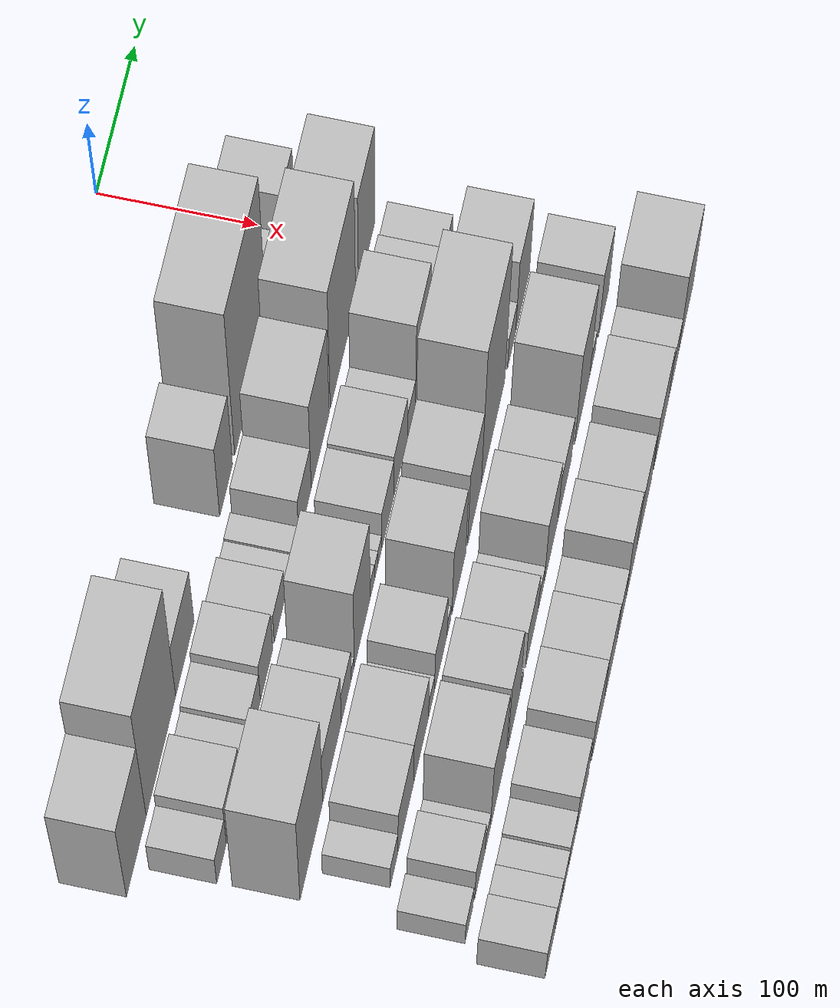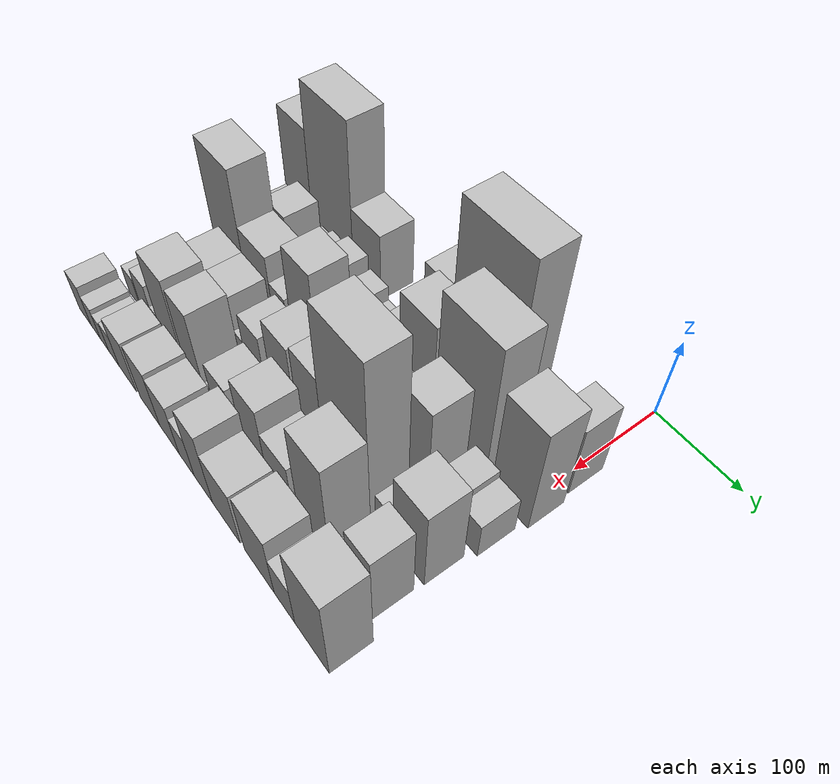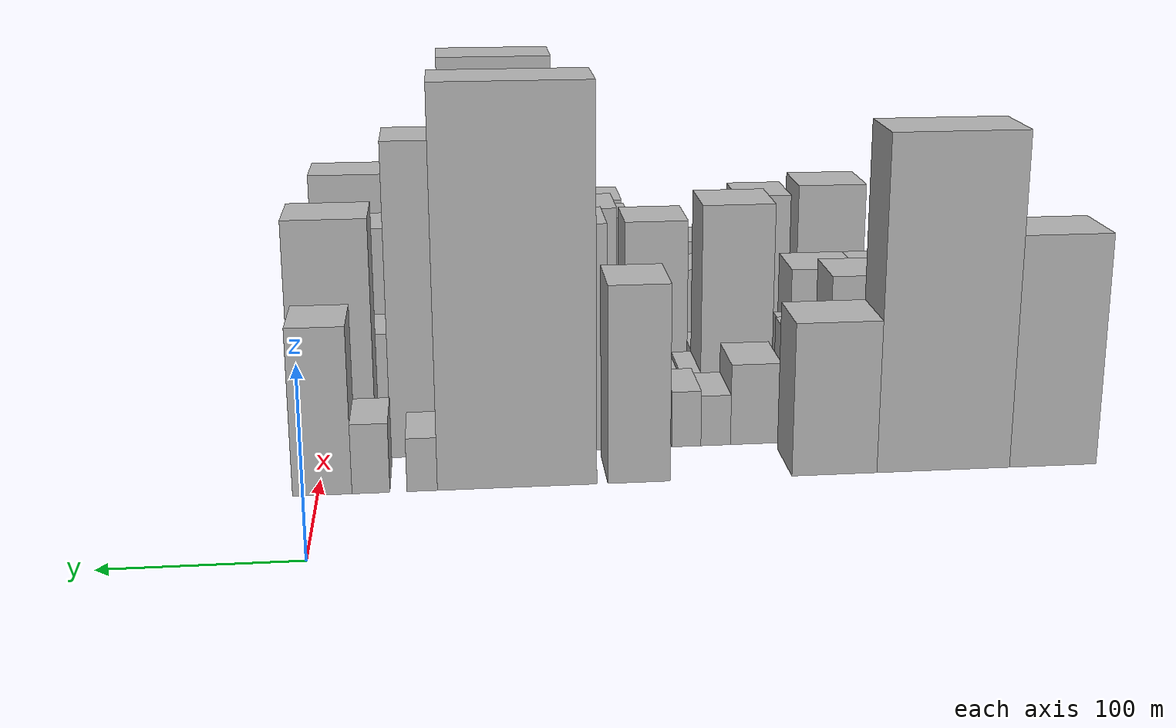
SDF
<sdf version="1.6">
 <world name="default">
  <model name="building_14">
   <static>1</static>
   <pose>100.0000 -401.4959 0 0.000000 0.000000 0.000000</pose>
   <link name="link">
    <pose>0 0 66.00 0 0 0</pose>
    <collision name="collision"><geometry><box><size>40.0000 49.4664 132.0000</size></box></geometry></collision>
    <visual name="visual">
     <cast_shadows>0</cast_shadows>
     <geometry><box><size>40.0000 49.4664 132.0000</size></box></geometry>
     <material>
      <script>
       <uri>model://HANNAS_wall/materials/scripts</uri>
       <uri>model://HANNAS_wall/materials/textures</uri>
       <name>vrc/HANNAS_wall</name>
      </script>
     </material>
    </visual>
   </link>
  </model>
  <model name="building_15">
   <static>1</static>
   <pose>100.0000 -339.3826 0 0.000000 0.000000 0.000000</pose>
   <link name="link">
    <pose>0 0 94.50 0 0 0</pose>
    <collision name="collision"><geometry><box><size>40.0000 74.7603 189.0000</size></box></geometry></collision>
    <visual name="visual">
     <cast_shadows>0</cast_shadows>
     <geometry><box><size>40.0000 74.7603 189.0000</size></box></geometry>
     <material>
      <script>
       <uri>model://HANNAS_wall/materials/scripts</uri>
       <uri>model://HANNAS_wall/materials/textures</uri>
       <name>vrc/HANNAS_wall</name>
      </script>
     </material>
    </visual>
   </link>
  </model>
  <model name="building_16">
   <static>1</static>
   <pose>100.0000 -278.3707 0 0.000000 0.000000 0.000000</pose>
   <link name="link">
    <pose>0 0 43.50 0 0 0</pose>
    <collision name="collision"><geometry><box><size>40.0000 47.2636 87.0000</size></box></geometry></collision>
    <visual name="visual">
     <cast_shadows>0</cast_shadows>
     <geometry><box><size>40.0000 47.2636 87.0000</size></box></geometry>
     <material>
      <script>
       <uri>model://HANNAS_wall/materials/scripts</uri>
       <uri>model://HANNAS_wall/materials/textures</uri>
       <name>vrc/HANNAS_wall</name>
      </script>
     </material>
    </visual>
   </link>
  </model>
  <model name="building_17">
   <static>1</static>
   <pose>100.0000 -170.9762 0 0.000000 0.000000 0.000000</pose>
   <link name="link">
    <pose>0 0 55.50 0 0 0</pose>
    <collision name="collision"><geometry><box><size>40.0000 33.8418 111.0000</size></box></geometry></collision>
    <visual name="visual">
     <cast_shadows>0</cast_shadows>
     <geometry><box><size>40.0000 33.8418 111.0000</size></box></geometry>
     <material>
      <script>
       <uri>model://HANNAS_wall/materials/scripts</uri>
       <uri>model://HANNAS_wall/materials/textures</uri>
       <name>vrc/HANNAS_wall</name>
      </script>
     </material>
    </visual>
   </link>
  </model>
  <model name="building_18">
   <static>1</static>
   <pose>100.0000 -105.3634 0 0.000000 0.000000 0.000000</pose>
   <link name="link">
    <pose>0 0 109.50 0 0 0</pose>
    <collision name="collision"><geometry><box><size>40.0000 85.3837 219.0000</size></box></geometry></collision>
    <visual name="visual">
     <cast_shadows>0</cast_shadows>
     <geometry><box><size>40.0000 85.3837 219.0000</size></box></geometry>
     <material>
      <script>
       <uri>model://HANNAS_wall/materials/scripts</uri>
       <uri>model://HANNAS_wall/materials/textures</uri>
       <name>vrc/HANNAS_wall</name>
      </script>
     </material>
    </visual>
   </link>
  </model>
  <model name="building_19">
   <static>1</static>
   <pose>100.0000 -54.6219 0 0.000000 0.000000 0.000000</pose>
   <link name="link">
    <pose>0 0 15.00 0 0 0</pose>
    <collision name="collision"><geometry><box><size>40.0000 16.0994 30.0000</size></box></geometry></collision>
    <visual name="visual">
     <cast_shadows>0</cast_shadows>
     <geometry><box><size>40.0000 16.0994 30.0000</size></box></geometry>
     <material>
      <script>
       <uri>model://HANNAS_wall/materials/scripts</uri>
       <uri>model://HANNAS_wall/materials/textures</uri>
       <name>vrc/HANNAS_wall</name>
      </script>
     </material>
    </visual>
   </link>
  </model>
  <model name="building_20">
   <static>1</static>
   <pose>100.0000 -27.5893 0 0.000000 0.000000 0.000000</pose>
   <link name="link">
    <pose>0 0 19.50 0 0 0</pose>
    <collision name="collision"><geometry><box><size>40.0000 19.9658 39.0000</size></box></geometry></collision>
    <visual name="visual">
     <cast_shadows>0</cast_shadows>
     <geometry><box><size>40.0000 19.9658 39.0000</size></box></geometry>
     <material>
      <script>
       <uri>model://HANNAS_wall/materials/scripts</uri>
       <uri>model://HANNAS_wall/materials/textures</uri>
       <name>vrc/HANNAS_wall</name>
      </script>
     </material>
    </visual>
   </link>
  </model>
  <model name="building_21">
   <static>1</static>
   <pose>100.0000 -2.0361 0 0.000000 0.000000 0.000000</pose>
   <link name="link">
    <pose>0 0 46.50 0 0 0</pose>
    <collision name="collision"><geometry><box><size>40.0000 31.1406 93.0000</size></box></geometry></collision>
    <visual name="visual">
     <cast_shadows>0</cast_shadows>
     <geometry><box><size>40.0000 31.1406 93.0000</size></box></geometry>
     <material>
      <script>
       <uri>model://HANNAS_wall/materials/scripts</uri>
       <uri>model://HANNAS_wall/materials/textures</uri>
       <name>vrc/HANNAS_wall</name>
      </script>
     </material>
    </visual>
   </link>
  </model>
  <model name="building_57">
   <static>1</static>
   <pose>149.0000 -395.1287 0 0.000000 0.000000 0.000000</pose>
   <link name="link">
    <pose>0 0 24.00 0 0 0</pose>
    <collision name="collision"><geometry><box><size>40.0000 24.6093 48.0000</size></box></geometry></collision>
    <visual name="visual">
     <cast_shadows>0</cast_shadows>
     <geometry><box><size>40.0000 24.6093 48.0000</size></box></geometry>
     <material>
      <script>
       <uri>model://HANNAS_wall/materials/scripts</uri>
       <uri>model://HANNAS_wall/materials/textures</uri>
       <name>vrc/HANNAS_wall</name>
      </script>
     </material>
    </visual>
   </link>
  </model>
  <model name="building_58">
   <static>1</static>
   <pose>149.0000 -364.3468 0 0.000000 0.000000 0.000000</pose>
   <link name="link">
    <pose>0 0 34.50 0 0 0</pose>
    <collision name="collision"><geometry><box><size>40.0000 36.9546 69.0000</size></box></geometry></collision>
    <visual name="visual">
     <cast_shadows>0</cast_shadows>
     <geometry><box><size>40.0000 36.9546 69.0000</size></box></geometry>
     <material>
      <script>
       <uri>model://HANNAS_wall/materials/scripts</uri>
       <uri>model://HANNAS_wall/materials/textures</uri>
       <name>vrc/HANNAS_wall</name>
      </script>
     </material>
    </visual>
   </link>
  </model>
  <model name="building_59">
   <static>1</static>
   <pose>149.0000 -332.0587 0 0.000000 0.000000 0.000000</pose>
   <link name="link">
    <pose>0 0 19.50 0 0 0</pose>
    <collision name="collision"><geometry><box><size>40.0000 19.6216 39.0000</size></box></geometry></collision>
    <visual name="visual">
     <cast_shadows>0</cast_shadows>
     <geometry><box><size>40.0000 19.6216 39.0000</size></box></geometry>
     <material>
      <script>
       <uri>model://HANNAS_wall/materials/scripts</uri>
       <uri>model://HANNAS_wall/materials/textures</uri>
       <name>vrc/HANNAS_wall</name>
      </script>
     </material>
    </visual>
   </link>
  </model>
  <model name="building_60">
   <static>1</static>
   <pose>149.0000 -308.2977 0 0.000000 0.000000 0.000000</pose>
   <link name="link">
    <pose>0 0 24.00 0 0 0</pose>
    <collision name="collision"><geometry><box><size>40.0000 27.9004 48.0000</size></box></geometry></collision>
    <visual name="visual">
     <cast_shadows>0</cast_shadows>
     <geometry><box><size>40.0000 27.9004 48.0000</size></box></geometry>
     <material>
      <script>
       <uri>model://HANNAS_wall/materials/scripts</uri>
       <uri>model://HANNAS_wall/materials/textures</uri>
       <name>vrc/HANNAS_wall</name>
      </script>
     </material>
    </visual>
   </link>
  </model>
  <model name="building_61">
   <static>1</static>
   <pose>149.0000 -278.0812 0 0.000000 0.000000 0.000000</pose>
   <link name="link">
    <pose>0 0 31.50 0 0 0</pose>
    <collision name="collision"><geometry><box><size>40.0000 32.5325 63.0000</size></box></geometry></collision>
    <visual name="visual">
     <cast_shadows>0</cast_shadows>
     <geometry><box><size>40.0000 32.5325 63.0000</size></box></geometry>
     <material>
      <script>
       <uri>model://HANNAS_wall/materials/scripts</uri>
       <uri>model://HANNAS_wall/materials/textures</uri>
       <name>vrc/HANNAS_wall</name>
      </script>
     </material>
    </visual>
   </link>
  </model>
  <model name="building_62">
   <static>1</static>
   <pose>149.0000 -243.5460 0 0.000000 0.000000 0.000000</pose>
   <link name="link">
    <pose>0 0 24.00 0 0 0</pose>
    <collision name="collision"><geometry><box><size>40.0000 28.5379 48.0000</size></box></geometry></collision>
    <visual name="visual">
     <cast_shadows>0</cast_shadows>
     <geometry><box><size>40.0000 28.5379 48.0000</size></box></geometry>
     <material>
      <script>
       <uri>model://HANNAS_wall/materials/scripts</uri>
       <uri>model://HANNAS_wall/materials/textures</uri>
       <name>vrc/HANNAS_wall</name>
      </script>
     </material>
    </visual>
   </link>
  </model>
  <model name="building_63">
   <static>1</static>
   <pose>149.0000 -220.7330 0 0.000000 0.000000 0.000000</pose>
   <link name="link">
    <pose>0 0 15.00 0 0 0</pose>
    <collision name="collision"><geometry><box><size>40.0000 17.0881 30.0000</size></box></geometry></collision>
    <visual name="visual">
     <cast_shadows>0</cast_shadows>
     <geometry><box><size>40.0000 17.0881 30.0000</size></box></geometry>
     <material>
      <script>
       <uri>model://HANNAS_wall/materials/scripts</uri>
       <uri>model://HANNAS_wall/materials/textures</uri>
       <name>vrc/HANNAS_wall</name>
      </script>
     </material>
    </visual>
   </link>
  </model>
  <model name="building_64">
   <static>1</static>
   <pose>149.0000 -203.7833 0 0.000000 0.000000 0.000000</pose>
   <link name="link">
    <pose>0 0 16.50 0 0 0</pose>
    <collision name="collision"><geometry><box><size>40.0000 16.8115 33.0000</size></box></geometry></collision>
    <visual name="visual">
     <cast_shadows>0</cast_shadows>
     <geometry><box><size>40.0000 16.8115 33.0000</size></box></geometry>
     <material>
      <script>
       <uri>model://HANNAS_wall/materials/scripts</uri>
       <uri>model://HANNAS_wall/materials/textures</uri>
       <name>vrc/HANNAS_wall</name>
      </script>
     </material>
    </visual>
   </link>
  </model>
  <model name="building_65">
   <static>1</static>
   <pose>149.0000 -175.4910 0 0.000000 0.000000 0.000000</pose>
   <link name="link">
    <pose>0 0 33.00 0 0 0</pose>
    <collision name="collision"><geometry><box><size>40.0000 33.7731 66.0000</size></box></geometry></collision>
    <visual name="visual">
     <cast_shadows>0</cast_shadows>
     <geometry><box><size>40.0000 33.7731 66.0000</size></box></geometry>
     <material>
      <script>
       <uri>model://HANNAS_wall/materials/scripts</uri>
       <uri>model://HANNAS_wall/materials/textures</uri>
       <name>vrc/HANNAS_wall</name>
      </script>
     </material>
    </visual>
   </link>
  </model>
  <model name="building_66">
   <static>1</static>
   <pose>149.0000 -134.2729 0 0.000000 0.000000 0.000000</pose>
   <link name="link">
    <pose>0 0 66.00 0 0 0</pose>
    <collision name="collision"><geometry><box><size>40.0000 48.6631 132.0000</size></box></geometry></collision>
    <visual name="visual">
     <cast_shadows>0</cast_shadows>
     <geometry><box><size>40.0000 48.6631 132.0000</size></box></geometry>
     <material>
      <script>
       <uri>model://HANNAS_wall/materials/scripts</uri>
       <uri>model://HANNAS_wall/materials/textures</uri>
       <name>vrc/HANNAS_wall</name>
      </script>
     </material>
    </visual>
   </link>
  </model>
  <model name="building_67">
   <static>1</static>
   <pose>149.0000 -71.8747 0 0.000000 0.000000 0.000000</pose>
   <link name="link">
    <pose>0 0 90.00 0 0 0</pose>
    <collision name="collision"><geometry><box><size>40.0000 70.1333 180.0000</size></box></geometry></collision>
    <visual name="visual">
     <cast_shadows>0</cast_shadows>
     <geometry><box><size>40.0000 70.1333 180.0000</size></box></geometry>
     <material>
      <script>
       <uri>model://HANNAS_wall/materials/scripts</uri>
       <uri>model://HANNAS_wall/materials/textures</uri>
       <name>vrc/HANNAS_wall</name>
      </script>
     </material>
    </visual>
   </link>
  </model>
  <model name="building_68">
   <static>1</static>
   <pose>149.0000 -5.6333 0 0.000000 0.000000 0.000000</pose>
   <link name="link">
    <pose>0 0 69.00 0 0 0</pose>
    <collision name="collision"><geometry><box><size>40.0000 46.3496 138.0000</size></box></geometry></collision>
    <visual name="visual">
     <cast_shadows>0</cast_shadows>
     <geometry><box><size>40.0000 46.3496 138.0000</size></box></geometry>
     <material>
      <script>
       <uri>model://HANNAS_wall/materials/scripts</uri>
       <uri>model://HANNAS_wall/materials/textures</uri>
       <name>vrc/HANNAS_wall</name>
      </script>
     </material>
    </visual>
   </link>
  </model>
  <model name="building_110">
   <static>1</static>
   <pose>198.0000 -376.8604 0 0.000000 0.000000 0.000000</pose>
   <link name="link">
    <pose>0 0 76.50 0 0 0</pose>
    <collision name="collision"><geometry><box><size>40.0000 59.9636 153.0000</size></box></geometry></collision>
    <visual name="visual">
     <cast_shadows>0</cast_shadows>
     <geometry><box><size>40.0000 59.9636 153.0000</size></box></geometry>
     <material>
      <script>
       <uri>model://HANNAS_wall/materials/scripts</uri>
       <uri>model://HANNAS_wall/materials/textures</uri>
       <name>vrc/HANNAS_wall</name>
      </script>
     </material>
    </visual>
   </link>
  </model>
  <model name="building_111">
   <static>1</static>
   <pose>198.0000 -322.1669 0 0.000000 0.000000 0.000000</pose>
   <link name="link">
    <pose>0 0 42.00 0 0 0</pose>
    <collision name="collision"><geometry><box><size>40.0000 49.4233 84.0000</size></box></geometry></collision>
    <visual name="visual">
     <cast_shadows>0</cast_shadows>
     <geometry><box><size>40.0000 49.4233 84.0000</size></box></geometry>
     <material>
      <script>
       <uri>model://HANNAS_wall/materials/scripts</uri>
       <uri>model://HANNAS_wall/materials/textures</uri>
       <name>vrc/HANNAS_wall</name>
      </script>
     </material>
    </visual>
   </link>
  </model>
  <model name="building_112">
   <static>1</static>
   <pose>198.0000 -283.9338 0 0.000000 0.000000 0.000000</pose>
   <link name="link">
    <pose>0 0 25.50 0 0 0</pose>
    <collision name="collision"><geometry><box><size>40.0000 27.0429 51.0000</size></box></geometry></collision>
    <visual name="visual">
     <cast_shadows>0</cast_shadows>
     <geometry><box><size>40.0000 27.0429 51.0000</size></box></geometry>
     <material>
      <script>
       <uri>model://HANNAS_wall/materials/scripts</uri>
       <uri>model://HANNAS_wall/materials/textures</uri>
       <name>vrc/HANNAS_wall</name>
      </script>
     </material>
    </visual>
   </link>
  </model>
  <model name="building_113">
   <static>1</static>
   <pose>198.0000 -266.3054 0 0.000000 0.000000 0.000000</pose>
   <link name="link">
    <pose>0 0 9.00 0 0 0</pose>
    <collision name="collision"><geometry><box><size>40.0000 8.2140 18.0000</size></box></geometry></collision>
    <visual name="visual">
     <cast_shadows>0</cast_shadows>
     <geometry><box><size>40.0000 8.2140 18.0000</size></box></geometry>
     <material>
      <script>
       <uri>model://HANNAS_wall/materials/scripts</uri>
       <uri>model://HANNAS_wall/materials/textures</uri>
       <name>vrc/HANNAS_wall</name>
      </script>
     </material>
    </visual>
   </link>
  </model>
  <model name="building_114">
   <static>1</static>
   <pose>198.0000 -240.7246 0 0.000000 0.000000 0.000000</pose>
   <link name="link">
    <pose>0 0 64.50 0 0 0</pose>
    <collision name="collision"><geometry><box><size>40.0000 42.9476 129.0000</size></box></geometry></collision>
    <visual name="visual">
     <cast_shadows>0</cast_shadows>
     <geometry><box><size>40.0000 42.9476 129.0000</size></box></geometry>
     <material>
      <script>
       <uri>model://HANNAS_wall/materials/scripts</uri>
       <uri>model://HANNAS_wall/materials/textures</uri>
       <name>vrc/HANNAS_wall</name>
      </script>
     </material>
    </visual>
   </link>
  </model>
  <model name="building_115">
   <static>1</static>
   <pose>198.0000 -213.1814 0 0.000000 0.000000 0.000000</pose>
   <link name="link">
    <pose>0 0 13.50 0 0 0</pose>
    <collision name="collision"><geometry><box><size>40.0000 12.1388 27.0000</size></box></geometry></collision>
    <visual name="visual">
     <cast_shadows>0</cast_shadows>
     <geometry><box><size>40.0000 12.1388 27.0000</size></box></geometry>
     <material>
      <script>
       <uri>model://HANNAS_wall/materials/scripts</uri>
       <uri>model://HANNAS_wall/materials/textures</uri>
       <name>vrc/HANNAS_wall</name>
      </script>
     </material>
    </visual>
   </link>
  </model>
  <model name="building_116">
   <static>1</static>
   <pose>198.0000 -202.1555 0 0.000000 0.000000 0.000000</pose>
   <link name="link">
    <pose>0 0 12.00 0 0 0</pose>
    <collision name="collision"><geometry><box><size>40.0000 9.9130 24.0000</size></box></geometry></collision>
    <visual name="visual">
     <cast_shadows>0</cast_shadows>
     <geometry><box><size>40.0000 9.9130 24.0000</size></box></geometry>
     <material>
      <script>
       <uri>model://HANNAS_wall/materials/scripts</uri>
       <uri>model://HANNAS_wall/materials/textures</uri>
       <name>vrc/HANNAS_wall</name>
      </script>
     </material>
    </visual>
   </link>
  </model>
  <model name="building_117">
   <static>1</static>
   <pose>198.0000 -192.2026 0 0.000000 0.000000 0.000000</pose>
   <link name="link">
    <pose>0 0 12.00 0 0 0</pose>
    <collision name="collision"><geometry><box><size>40.0000 9.9929 24.0000</size></box></geometry></collision>
    <visual name="visual">
     <cast_shadows>0</cast_shadows>
     <geometry><box><size>40.0000 9.9929 24.0000</size></box></geometry>
     <material>
      <script>
       <uri>model://HANNAS_wall/materials/scripts</uri>
       <uri>model://HANNAS_wall/materials/textures</uri>
       <name>vrc/HANNAS_wall</name>
      </script>
     </material>
    </visual>
   </link>
  </model>
  <model name="building_118">
   <static>1</static>
   <pose>198.0000 -170.3480 0 0.000000 0.000000 0.000000</pose>
   <link name="link">
    <pose>0 0 30.00 0 0 0</pose>
    <collision name="collision"><geometry><box><size>40.0000 33.7161 60.0000</size></box></geometry></collision>
    <visual name="visual">
     <cast_shadows>0</cast_shadows>
     <geometry><box><size>40.0000 33.7161 60.0000</size></box></geometry>
     <material>
      <script>
       <uri>model://HANNAS_wall/materials/scripts</uri>
       <uri>model://HANNAS_wall/materials/textures</uri>
       <name>vrc/HANNAS_wall</name>
      </script>
     </material>
    </visual>
   </link>
  </model>
  <model name="building_119">
   <static>1</static>
   <pose>198.0000 -134.6987 0 0.000000 0.000000 0.000000</pose>
   <link name="link">
    <pose>0 0 33.00 0 0 0</pose>
    <collision name="collision"><geometry><box><size>40.0000 37.5825 66.0000</size></box></geometry></collision>
    <visual name="visual">
     <cast_shadows>0</cast_shadows>
     <geometry><box><size>40.0000 37.5825 66.0000</size></box></geometry>
     <material>
      <script>
       <uri>model://HANNAS_wall/materials/scripts</uri>
       <uri>model://HANNAS_wall/materials/textures</uri>
       <name>vrc/HANNAS_wall</name>
      </script>
     </material>
    </visual>
   </link>
  </model>
  <model name="building_120">
   <static>1</static>
   <pose>198.0000 -104.5976 0 0.000000 0.000000 0.000000</pose>
   <link name="link">
    <pose>0 0 19.50 0 0 0</pose>
    <collision name="collision"><geometry><box><size>40.0000 22.6197 39.0000</size></box></geometry></collision>
    <visual name="visual">
     <cast_shadows>0</cast_shadows>
     <geometry><box><size>40.0000 22.6197 39.0000</size></box></geometry>
     <material>
      <script>
       <uri>model://HANNAS_wall/materials/scripts</uri>
       <uri>model://HANNAS_wall/materials/textures</uri>
       <name>vrc/HANNAS_wall</name>
      </script>
     </material>
    </visual>
   </link>
  </model>
  <model name="building_121">
   <static>1</static>
   <pose>198.0000 -73.0975 0 0.000000 0.000000 0.000000</pose>
   <link name="link">
    <pose>0 0 61.50 0 0 0</pose>
    <collision name="collision"><geometry><box><size>40.0000 40.3804 123.0000</size></box></geometry></collision>
    <visual name="visual">
     <cast_shadows>0</cast_shadows>
     <geometry><box><size>40.0000 40.3804 123.0000</size></box></geometry>
     <material>
      <script>
       <uri>model://HANNAS_wall/materials/scripts</uri>
       <uri>model://HANNAS_wall/materials/textures</uri>
       <name>vrc/HANNAS_wall</name>
      </script>
     </material>
    </visual>
   </link>
  </model>
  <model name="building_122">
   <static>1</static>
   <pose>198.0000 -29.0464 0 0.000000 0.000000 0.000000</pose>
   <link name="link">
    <pose>0 0 28.50 0 0 0</pose>
    <collision name="collision"><geometry><box><size>40.0000 29.7220 57.0000</size></box></geometry></collision>
    <visual name="visual">
     <cast_shadows>0</cast_shadows>
     <geometry><box><size>40.0000 29.7220 57.0000</size></box></geometry>
     <material>
      <script>
       <uri>model://HANNAS_wall/materials/scripts</uri>
       <uri>model://HANNAS_wall/materials/textures</uri>
       <name>vrc/HANNAS_wall</name>
      </script>
     </material>
    </visual>
   </link>
  </model>
  <model name="building_123">
   <static>1</static>
   <pose>198.0000 -1.2644 0 0.000000 0.000000 0.000000</pose>
   <link name="link">
    <pose>0 0 24.00 0 0 0</pose>
    <collision name="collision"><geometry><box><size>40.0000 25.8420 48.0000</size></box></geometry></collision>
    <visual name="visual">
     <cast_shadows>0</cast_shadows>
     <geometry><box><size>40.0000 25.8420 48.0000</size></box></geometry>
     <material>
      <script>
       <uri>model://HANNAS_wall/materials/scripts</uri>
       <uri>model://HANNAS_wall/materials/textures</uri>
       <name>vrc/HANNAS_wall</name>
      </script>
     </material>
    </visual>
   </link>
  </model>
  <model name="building_157">
   <static>1</static>
   <pose>247.0000 -377.8255 0 0.000000 0.000000 0.000000</pose>
   <link name="link">
    <pose>0 0 19.50 0 0 0</pose>
    <collision name="collision"><geometry><box><size>40.0000 21.0057 39.0000</size></box></geometry></collision>
    <visual name="visual">
     <cast_shadows>0</cast_shadows>
     <geometry><box><size>40.0000 21.0057 39.0000</size></box></geometry>
     <material>
      <script>
       <uri>model://HANNAS_wall/materials/scripts</uri>
       <uri>model://HANNAS_wall/materials/textures</uri>
       <name>vrc/HANNAS_wall</name>
      </script>
     </material>
    </visual>
   </link>
  </model>
  <model name="building_158">
   <static>1</static>
   <pose>247.0000 -345.9843 0 0.000000 0.000000 0.000000</pose>
   <link name="link">
    <pose>0 0 37.50 0 0 0</pose>
    <collision name="collision"><geometry><box><size>40.0000 42.6767 75.0000</size></box></geometry></collision>
    <visual name="visual">
     <cast_shadows>0</cast_shadows>
     <geometry><box><size>40.0000 42.6767 75.0000</size></box></geometry>
     <material>
      <script>
       <uri>model://HANNAS_wall/materials/scripts</uri>
       <uri>model://HANNAS_wall/materials/textures</uri>
       <name>vrc/HANNAS_wall</name>
      </script>
     </material>
    </visual>
   </link>
  </model>
  <model name="building_159">
   <static>1</static>
   <pose>247.0000 -304.0642 0 0.000000 0.000000 0.000000</pose>
   <link name="link">
    <pose>0 0 37.50 0 0 0</pose>
    <collision name="collision"><geometry><box><size>40.0000 41.1634 75.0000</size></box></geometry></collision>
    <visual name="visual">
     <cast_shadows>0</cast_shadows>
     <geometry><box><size>40.0000 41.1634 75.0000</size></box></geometry>
     <material>
      <script>
       <uri>model://HANNAS_wall/materials/scripts</uri>
       <uri>model://HANNAS_wall/materials/textures</uri>
       <name>vrc/HANNAS_wall</name>
      </script>
     </material>
    </visual>
   </link>
  </model>
  <model name="building_160">
   <static>1</static>
   <pose>247.0000 -275.2897 0 0.000000 0.000000 0.000000</pose>
   <link name="link">
    <pose>0 0 15.00 0 0 0</pose>
    <collision name="collision"><geometry><box><size>40.0000 16.3857 30.0000</size></box></geometry></collision>
    <visual name="visual">
     <cast_shadows>0</cast_shadows>
     <geometry><box><size>40.0000 16.3857 30.0000</size></box></geometry>
     <material>
      <script>
       <uri>model://HANNAS_wall/materials/scripts</uri>
       <uri>model://HANNAS_wall/materials/textures</uri>
       <name>vrc/HANNAS_wall</name>
      </script>
     </material>
    </visual>
   </link>
  </model>
  <model name="building_161">
   <static>1</static>
   <pose>247.0000 -249.5068 0 0.000000 0.000000 0.000000</pose>
   <link name="link">
    <pose>0 0 34.50 0 0 0</pose>
    <collision name="collision"><geometry><box><size>40.0000 35.1802 69.0000</size></box></geometry></collision>
    <visual name="visual">
     <cast_shadows>0</cast_shadows>
     <geometry><box><size>40.0000 35.1802 69.0000</size></box></geometry>
     <material>
      <script>
       <uri>model://HANNAS_wall/materials/scripts</uri>
       <uri>model://HANNAS_wall/materials/textures</uri>
       <name>vrc/HANNAS_wall</name>
      </script>
     </material>
    </visual>
   </link>
  </model>
  <model name="building_162">
   <static>1</static>
   <pose>247.0000 -226.5635 0 0.000000 0.000000 0.000000</pose>
   <link name="link">
    <pose>0 0 12.00 0 0 0</pose>
    <collision name="collision"><geometry><box><size>40.0000 10.7062 24.0000</size></box></geometry></collision>
    <visual name="visual">
     <cast_shadows>0</cast_shadows>
     <geometry><box><size>40.0000 10.7062 24.0000</size></box></geometry>
     <material>
      <script>
       <uri>model://HANNAS_wall/materials/scripts</uri>
       <uri>model://HANNAS_wall/materials/textures</uri>
       <name>vrc/HANNAS_wall</name>
      </script>
     </material>
    </visual>
   </link>
  </model>
  <model name="building_163">
   <static>1</static>
   <pose>247.0000 -198.7092 0 0.000000 0.000000 0.000000</pose>
   <link name="link">
    <pose>0 0 54.00 0 0 0</pose>
    <collision name="collision"><geometry><box><size>40.0000 39.0023 108.0000</size></box></geometry></collision>
    <visual name="visual">
     <cast_shadows>0</cast_shadows>
     <geometry><box><size>40.0000 39.0023 108.0000</size></box></geometry>
     <material>
      <script>
       <uri>model://HANNAS_wall/materials/scripts</uri>
       <uri>model://HANNAS_wall/materials/textures</uri>
       <name>vrc/HANNAS_wall</name>
      </script>
     </material>
    </visual>
   </link>
  </model>
  <model name="building_164">
   <static>1</static>
   <pose>247.0000 -154.5233 0 0.000000 0.000000 0.000000</pose>
   <link name="link">
    <pose>0 0 58.50 0 0 0</pose>
    <collision name="collision"><geometry><box><size>40.0000 39.3696 117.0000</size></box></geometry></collision>
    <visual name="visual">
     <cast_shadows>0</cast_shadows>
     <geometry><box><size>40.0000 39.3696 117.0000</size></box></geometry>
     <material>
      <script>
       <uri>model://HANNAS_wall/materials/scripts</uri>
       <uri>model://HANNAS_wall/materials/textures</uri>
       <name>vrc/HANNAS_wall</name>
      </script>
     </material>
    </visual>
   </link>
  </model>
  <model name="building_165">
   <static>1</static>
   <pose>247.0000 -101.2000 0 0.000000 0.000000 0.000000</pose>
   <link name="link">
    <pose>0 0 105.00 0 0 0</pose>
    <collision name="collision"><geometry><box><size>40.0000 67.2770 210.0000</size></box></geometry></collision>
    <visual name="visual">
     <cast_shadows>0</cast_shadows>
     <geometry><box><size>40.0000 67.2770 210.0000</size></box></geometry>
     <material>
      <script>
       <uri>model://HANNAS_wall/materials/scripts</uri>
       <uri>model://HANNAS_wall/materials/textures</uri>
       <name>vrc/HANNAS_wall</name>
      </script>
     </material>
    </visual>
   </link>
  </model>
  <model name="building_166">
   <static>1</static>
   <pose>247.0000 -47.5439 0 0.000000 0.000000 0.000000</pose>
   <link name="link">
    <pose>0 0 24.00 0 0 0</pose>
    <collision name="collision"><geometry><box><size>40.0000 24.0353 48.0000</size></box></geometry></collision>
    <visual name="visual">
     <cast_shadows>0</cast_shadows>
     <geometry><box><size>40.0000 24.0353 48.0000</size></box></geometry>
     <material>
      <script>
       <uri>model://HANNAS_wall/materials/scripts</uri>
       <uri>model://HANNAS_wall/materials/textures</uri>
       <name>vrc/HANNAS_wall</name>
      </script>
     </material>
    </visual>
   </link>
  </model>
  <model name="building_167">
   <static>1</static>
   <pose>247.0000 -14.9730 0 0.000000 0.000000 0.000000</pose>
   <link name="link">
    <pose>0 0 54.00 0 0 0</pose>
    <collision name="collision"><geometry><box><size>40.0000 41.1064 108.0000</size></box></geometry></collision>
    <visual name="visual">
     <cast_shadows>0</cast_shadows>
     <geometry><box><size>40.0000 41.1064 108.0000</size></box></geometry>
     <material>
      <script>
       <uri>model://HANNAS_wall/materials/scripts</uri>
       <uri>model://HANNAS_wall/materials/textures</uri>
       <name>vrc/HANNAS_wall</name>
      </script>
     </material>
    </visual>
   </link>
  </model>
  <model name="building_198">
   <static>1</static>
   <pose>296.0000 -400.3480 0 0.000000 0.000000 0.000000</pose>
   <link name="link">
    <pose>0 0 19.50 0 0 0</pose>
    <collision name="collision"><geometry><box><size>40.0000 22.5095 39.0000</size></box></geometry></collision>
    <visual name="visual">
     <cast_shadows>0</cast_shadows>
     <geometry><box><size>40.0000 22.5095 39.0000</size></box></geometry>
     <material>
      <script>
       <uri>model://HANNAS_wall/materials/scripts</uri>
       <uri>model://HANNAS_wall/materials/textures</uri>
       <name>vrc/HANNAS_wall</name>
      </script>
     </material>
    </visual>
   </link>
  </model>
  <model name="building_199">
   <static>1</static>
   <pose>296.0000 -370.6741 0 0.000000 0.000000 0.000000</pose>
   <link name="link">
    <pose>0 0 28.50 0 0 0</pose>
    <collision name="collision"><geometry><box><size>40.0000 28.8384 57.0000</size></box></geometry></collision>
    <visual name="visual">
     <cast_shadows>0</cast_shadows>
     <geometry><box><size>40.0000 28.8384 57.0000</size></box></geometry>
     <material>
      <script>
       <uri>model://HANNAS_wall/materials/scripts</uri>
       <uri>model://HANNAS_wall/materials/textures</uri>
       <name>vrc/HANNAS_wall</name>
      </script>
     </material>
    </visual>
   </link>
  </model>
  <model name="building_200">
   <static>1</static>
   <pose>296.0000 -348.7391 0 0.000000 0.000000 0.000000</pose>
   <link name="link">
    <pose>0 0 15.00 0 0 0</pose>
    <collision name="collision"><geometry><box><size>40.0000 15.0317 30.0000</size></box></geometry></collision>
    <visual name="visual">
     <cast_shadows>0</cast_shadows>
     <geometry><box><size>40.0000 15.0317 30.0000</size></box></geometry>
     <material>
      <script>
       <uri>model://HANNAS_wall/materials/scripts</uri>
       <uri>model://HANNAS_wall/materials/textures</uri>
       <name>vrc/HANNAS_wall</name>
      </script>
     </material>
    </visual>
   </link>
  </model>
  <model name="building_201">
   <static>1</static>
   <pose>296.0000 -319.1450 0 0.000000 0.000000 0.000000</pose>
   <link name="link">
    <pose>0 0 58.50 0 0 0</pose>
    <collision name="collision"><geometry><box><size>40.0000 44.1565 117.0000</size></box></geometry></collision>
    <visual name="visual">
     <cast_shadows>0</cast_shadows>
     <geometry><box><size>40.0000 44.1565 117.0000</size></box></geometry>
     <material>
      <script>
       <uri>model://HANNAS_wall/materials/scripts</uri>
       <uri>model://HANNAS_wall/materials/textures</uri>
       <name>vrc/HANNAS_wall</name>
      </script>
     </material>
    </visual>
   </link>
  </model>
  <model name="building_202">
   <static>1</static>
   <pose>296.0000 -274.3989 0 0.000000 0.000000 0.000000</pose>
   <link name="link">
    <pose>0 0 55.50 0 0 0</pose>
    <collision name="collision"><geometry><box><size>40.0000 35.3356 111.0000</size></box></geometry></collision>
    <visual name="visual">
     <cast_shadows>0</cast_shadows>
     <geometry><box><size>40.0000 35.3356 111.0000</size></box></geometry>
     <material>
      <script>
       <uri>model://HANNAS_wall/materials/scripts</uri>
       <uri>model://HANNAS_wall/materials/textures</uri>
       <name>vrc/HANNAS_wall</name>
      </script>
     </material>
    </visual>
   </link>
  </model>
  <model name="building_203">
   <static>1</static>
   <pose>296.0000 -252.4715 0 0.000000 0.000000 0.000000</pose>
   <link name="link">
    <pose>0 0 9.00 0 0 0</pose>
    <collision name="collision"><geometry><box><size>40.0000 8.5191 18.0000</size></box></geometry></collision>
    <visual name="visual">
     <cast_shadows>0</cast_shadows>
     <geometry><box><size>40.0000 8.5191 18.0000</size></box></geometry>
     <material>
      <script>
       <uri>model://HANNAS_wall/materials/scripts</uri>
       <uri>model://HANNAS_wall/materials/textures</uri>
       <name>vrc/HANNAS_wall</name>
      </script>
     </material>
    </visual>
   </link>
  </model>
  <model name="building_204">
   <static>1</static>
   <pose>296.0000 -223.2793 0 0.000000 0.000000 0.000000</pose>
   <link name="link">
    <pose>0 0 31.50 0 0 0</pose>
    <collision name="collision"><geometry><box><size>40.0000 35.8652 63.0000</size></box></geometry></collision>
    <visual name="visual">
     <cast_shadows>0</cast_shadows>
     <geometry><box><size>40.0000 35.8652 63.0000</size></box></geometry>
     <material>
      <script>
       <uri>model://HANNAS_wall/materials/scripts</uri>
       <uri>model://HANNAS_wall/materials/textures</uri>
       <name>vrc/HANNAS_wall</name>
      </script>
     </material>
    </visual>
   </link>
  </model>
  <model name="building_205">
   <static>1</static>
   <pose>296.0000 -196.5066 0 0.000000 0.000000 0.000000</pose>
   <link name="link">
    <pose>0 0 15.00 0 0 0</pose>
    <collision name="collision"><geometry><box><size>40.0000 17.6801 30.0000</size></box></geometry></collision>
    <visual name="visual">
     <cast_shadows>0</cast_shadows>
     <geometry><box><size>40.0000 17.6801 30.0000</size></box></geometry>
     <material>
      <script>
       <uri>model://HANNAS_wall/materials/scripts</uri>
       <uri>model://HANNAS_wall/materials/textures</uri>
       <name>vrc/HANNAS_wall</name>
      </script>
     </material>
    </visual>
   </link>
  </model>
  <model name="building_206">
   <static>1</static>
   <pose>296.0000 -167.9911 0 0.000000 0.000000 0.000000</pose>
   <link name="link">
    <pose>0 0 49.50 0 0 0</pose>
    <collision name="collision"><geometry><box><size>40.0000 39.3510 99.0000</size></box></geometry></collision>
    <visual name="visual">
     <cast_shadows>0</cast_shadows>
     <geometry><box><size>40.0000 39.3510 99.0000</size></box></geometry>
     <material>
      <script>
       <uri>model://HANNAS_wall/materials/scripts</uri>
       <uri>model://HANNAS_wall/materials/textures</uri>
       <name>vrc/HANNAS_wall</name>
      </script>
     </material>
    </visual>
   </link>
  </model>
  <model name="building_207">
   <static>1</static>
   <pose>296.0000 -128.1557 0 0.000000 0.000000 0.000000</pose>
   <link name="link">
    <pose>0 0 34.50 0 0 0</pose>
    <collision name="collision"><geometry><box><size>40.0000 40.3198 69.0000</size></box></geometry></collision>
    <visual name="visual">
     <cast_shadows>0</cast_shadows>
     <geometry><box><size>40.0000 40.3198 69.0000</size></box></geometry>
     <material>
      <script>
       <uri>model://HANNAS_wall/materials/scripts</uri>
       <uri>model://HANNAS_wall/materials/textures</uri>
       <name>vrc/HANNAS_wall</name>
      </script>
     </material>
    </visual>
   </link>
  </model>
  <model name="building_208">
   <static>1</static>
   <pose>296.0000 -75.6448 0 0.000000 0.000000 0.000000</pose>
   <link name="link">
    <pose>0 0 70.50 0 0 0</pose>
    <collision name="collision"><geometry><box><size>40.0000 44.7020 141.0000</size></box></geometry></collision>
    <visual name="visual">
     <cast_shadows>0</cast_shadows>
     <geometry><box><size>40.0000 44.7020 141.0000</size></box></geometry>
     <material>
      <script>
       <uri>model://HANNAS_wall/materials/scripts</uri>
       <uri>model://HANNAS_wall/materials/textures</uri>
       <name>vrc/HANNAS_wall</name>
      </script>
     </material>
    </visual>
   </link>
  </model>
  <model name="building_209">
   <static>1</static>
   <pose>296.0000 -44.5739 0 0.000000 0.000000 0.000000</pose>
   <link name="link">
    <pose>0 0 15.00 0 0 0</pose>
    <collision name="collision"><geometry><box><size>40.0000 17.4398 30.0000</size></box></geometry></collision>
    <visual name="visual">
     <cast_shadows>0</cast_shadows>
     <geometry><box><size>40.0000 17.4398 30.0000</size></box></geometry>
     <material>
      <script>
       <uri>model://HANNAS_wall/materials/scripts</uri>
       <uri>model://HANNAS_wall/materials/textures</uri>
       <name>vrc/HANNAS_wall</name>
      </script>
     </material>
    </visual>
   </link>
  </model>
  <model name="building_210">
   <static>1</static>
   <pose>296.0000 -11.9981 0 0.000000 0.000000 0.000000</pose>
   <link name="link">
    <pose>0 0 48.00 0 0 0</pose>
    <collision name="collision"><geometry><box><size>40.0000 31.7119 96.0000</size></box></geometry></collision>
    <visual name="visual">
     <cast_shadows>0</cast_shadows>
     <geometry><box><size>40.0000 31.7119 96.0000</size></box></geometry>
     <material>
      <script>
       <uri>model://HANNAS_wall/materials/scripts</uri>
       <uri>model://HANNAS_wall/materials/textures</uri>
       <name>vrc/HANNAS_wall</name>
      </script>
     </material>
    </visual>
   </link>
  </model>
  <model name="building_250">
   <static>1</static>
   <pose>345.0000 -408.3565 0 0.000000 0.000000 0.000000</pose>
   <link name="link">
    <pose>0 0 27.00 0 0 0</pose>
    <collision name="collision"><geometry><box><size>40.0000 27.2223 54.0000</size></box></geometry></collision>
    <visual name="visual">
     <cast_shadows>0</cast_shadows>
     <geometry><box><size>40.0000 27.2223 54.0000</size></box></geometry>
     <material>
      <script>
       <uri>model://HANNAS_wall/materials/scripts</uri>
       <uri>model://HANNAS_wall/materials/textures</uri>
       <name>vrc/HANNAS_wall</name>
      </script>
     </material>
    </visual>
   </link>
  </model>
  <model name="building_251">
   <static>1</static>
   <pose>345.0000 -384.2266 0 0.000000 0.000000 0.000000</pose>
   <link name="link">
    <pose>0 0 21.00 0 0 0</pose>
    <collision name="collision"><geometry><box><size>40.0000 21.0374 42.0000</size></box></geometry></collision>
    <visual name="visual">
     <cast_shadows>0</cast_shadows>
     <geometry><box><size>40.0000 21.0374 42.0000</size></box></geometry>
     <material>
      <script>
       <uri>model://HANNAS_wall/materials/scripts</uri>
       <uri>model://HANNAS_wall/materials/textures</uri>
       <name>vrc/HANNAS_wall</name>
      </script>
     </material>
    </visual>
   </link>
  </model>
  <model name="building_252">
   <static>1</static>
   <pose>345.0000 -364.4502 0 0.000000 0.000000 0.000000</pose>
   <link name="link">
    <pose>0 0 18.00 0 0 0</pose>
    <collision name="collision"><geometry><box><size>40.0000 18.5155 36.0000</size></box></geometry></collision>
    <visual name="visual">
     <cast_shadows>0</cast_shadows>
     <geometry><box><size>40.0000 18.5155 36.0000</size></box></geometry>
     <material>
      <script>
       <uri>model://HANNAS_wall/materials/scripts</uri>
       <uri>model://HANNAS_wall/materials/textures</uri>
       <name>vrc/HANNAS_wall</name>
      </script>
     </material>
    </visual>
   </link>
  </model>
  <model name="building_253">
   <static>1</static>
   <pose>345.0000 -344.1340 0 0.000000 0.000000 0.000000</pose>
   <link name="link">
    <pose>0 0 21.00 0 0 0</pose>
    <collision name="collision"><geometry><box><size>40.0000 22.1170 42.0000</size></box></geometry></collision>
    <visual name="visual">
     <cast_shadows>0</cast_shadows>
     <geometry><box><size>40.0000 22.1170 42.0000</size></box></geometry>
     <material>
      <script>
       <uri>model://HANNAS_wall/materials/scripts</uri>
       <uri>model://HANNAS_wall/materials/textures</uri>
       <name>vrc/HANNAS_wall</name>
      </script>
     </material>
    </visual>
   </link>
  </model>
  <model name="building_254">
   <static>1</static>
   <pose>345.0000 -315.1744 0 0.000000 0.000000 0.000000</pose>
   <link name="link">
    <pose>0 0 34.50 0 0 0</pose>
    <collision name="collision"><geometry><box><size>40.0000 35.8022 69.0000</size></box></geometry></collision>
    <visual name="visual">
     <cast_shadows>0</cast_shadows>
     <geometry><box><size>40.0000 35.8022 69.0000</size></box></geometry>
     <material>
      <script>
       <uri>model://HANNAS_wall/materials/scripts</uri>
       <uri>model://HANNAS_wall/materials/textures</uri>
       <name>vrc/HANNAS_wall</name>
      </script>
     </material>
    </visual>
   </link>
  </model>
  <model name="building_255">
   <static>1</static>
   <pose>345.0000 -270.1899 0 0.000000 0.000000 0.000000</pose>
   <link name="link">
    <pose>0 0 37.50 0 0 0</pose>
    <collision name="collision"><geometry><box><size>40.0000 38.1667 75.0000</size></box></geometry></collision>
    <visual name="visual">
     <cast_shadows>0</cast_shadows>
     <geometry><box><size>40.0000 38.1667 75.0000</size></box></geometry>
     <material>
      <script>
       <uri>model://HANNAS_wall/materials/scripts</uri>
       <uri>model://HANNAS_wall/materials/textures</uri>
       <name>vrc/HANNAS_wall</name>
      </script>
     </material>
    </visual>
   </link>
  </model>
  <model name="building_256">
   <static>1</static>
   <pose>345.0000 -232.8892 0 0.000000 0.000000 0.000000</pose>
   <link name="link">
    <pose>0 0 34.50 0 0 0</pose>
    <collision name="collision"><geometry><box><size>40.0000 36.4347 69.0000</size></box></geometry></collision>
    <visual name="visual">
     <cast_shadows>0</cast_shadows>
     <geometry><box><size>40.0000 36.4347 69.0000</size></box></geometry>
     <material>
      <script>
       <uri>model://HANNAS_wall/materials/scripts</uri>
       <uri>model://HANNAS_wall/materials/textures</uri>
       <name>vrc/HANNAS_wall</name>
      </script>
     </material>
    </visual>
   </link>
  </model>
  <model name="building_257">
   <static>1</static>
   <pose>345.0000 -201.1311 0 0.000000 0.000000 0.000000</pose>
   <link name="link">
    <pose>0 0 27.00 0 0 0</pose>
    <collision name="collision"><geometry><box><size>40.0000 27.0816 54.0000</size></box></geometry></collision>
    <visual name="visual">
     <cast_shadows>0</cast_shadows>
     <geometry><box><size>40.0000 27.0816 54.0000</size></box></geometry>
     <material>
      <script>
       <uri>model://HANNAS_wall/materials/scripts</uri>
       <uri>model://HANNAS_wall/materials/textures</uri>
       <name>vrc/HANNAS_wall</name>
      </script>
     </material>
    </visual>
   </link>
  </model>
  <model name="building_258">
   <static>1</static>
   <pose>345.0000 -171.6998 0 0.000000 0.000000 0.000000</pose>
   <link name="link">
    <pose>0 0 49.50 0 0 0</pose>
    <collision name="collision"><geometry><box><size>40.0000 31.7811 99.0000</size></box></geometry></collision>
    <visual name="visual">
     <cast_shadows>0</cast_shadows>
     <geometry><box><size>40.0000 31.7811 99.0000</size></box></geometry>
     <material>
      <script>
       <uri>model://HANNAS_wall/materials/scripts</uri>
       <uri>model://HANNAS_wall/materials/textures</uri>
       <name>vrc/HANNAS_wall</name>
      </script>
     </material>
    </visual>
   </link>
  </model>
  <model name="building_259">
   <static>1</static>
   <pose>345.0000 -133.3308 0 0.000000 0.000000 0.000000</pose>
   <link name="link">
    <pose>0 0 37.50 0 0 0</pose>
    <collision name="collision"><geometry><box><size>40.0000 44.9569 75.0000</size></box></geometry></collision>
    <visual name="visual">
     <cast_shadows>0</cast_shadows>
     <geometry><box><size>40.0000 44.9569 75.0000</size></box></geometry>
     <material>
      <script>
       <uri>model://HANNAS_wall/materials/scripts</uri>
       <uri>model://HANNAS_wall/materials/textures</uri>
       <name>vrc/HANNAS_wall</name>
      </script>
     </material>
    </visual>
   </link>
  </model>
  <model name="building_260">
   <static>1</static>
   <pose>345.0000 -81.1977 0 0.000000 0.000000 0.000000</pose>
   <link name="link">
    <pose>0 0 42.00 0 0 0</pose>
    <collision name="collision"><geometry><box><size>40.0000 45.3093 84.0000</size></box></geometry></collision>
    <visual name="visual">
     <cast_shadows>0</cast_shadows>
     <geometry><box><size>40.0000 45.3093 84.0000</size></box></geometry>
     <material>
      <script>
       <uri>model://HANNAS_wall/materials/scripts</uri>
       <uri>model://HANNAS_wall/materials/textures</uri>
       <name>vrc/HANNAS_wall</name>
      </script>
     </material>
    </visual>
   </link>
  </model>
  <model name="building_261">
   <static>1</static>
   <pose>345.0000 -43.6578 0 0.000000 0.000000 0.000000</pose>
   <link name="link">
    <pose>0 0 28.50 0 0 0</pose>
    <collision name="collision"><geometry><box><size>40.0000 29.7706 57.0000</size></box></geometry></collision>
    <visual name="visual">
     <cast_shadows>0</cast_shadows>
     <geometry><box><size>40.0000 29.7706 57.0000</size></box></geometry>
     <material>
      <script>
       <uri>model://HANNAS_wall/materials/scripts</uri>
       <uri>model://HANNAS_wall/materials/textures</uri>
       <name>vrc/HANNAS_wall</name>
      </script>
     </material>
    </visual>
   </link>
  </model>
  <model name="building_262">
   <static>1</static>
   <pose>345.0000 -5.3029 0 0.000000 0.000000 0.000000</pose>
   <link name="link">
    <pose>0 0 60.00 0 0 0</pose>
    <collision name="collision"><geometry><box><size>40.0000 46.9391 120.0000</size></box></geometry></collision>
    <visual name="visual">
     <cast_shadows>0</cast_shadows>
     <geometry><box><size>40.0000 46.9391 120.0000</size></box></geometry>
     <material>
      <script>
       <uri>model://HANNAS_wall/materials/scripts</uri>
       <uri>model://HANNAS_wall/materials/textures</uri>
       <name>vrc/HANNAS_wall</name>
      </script>
     </material>
    </visual>
   </link>
  </model>
 </world>
</sdf>
